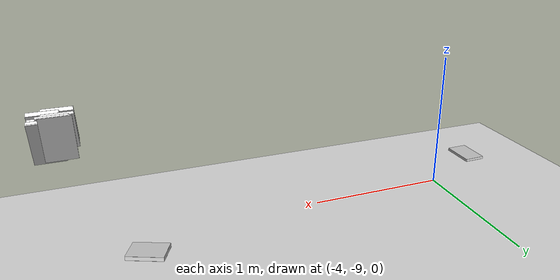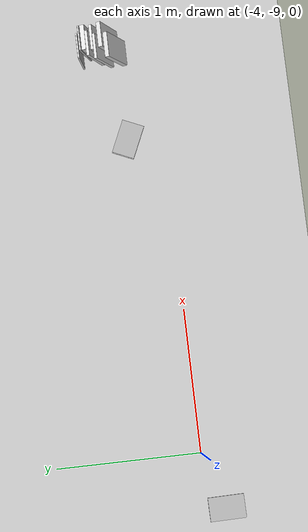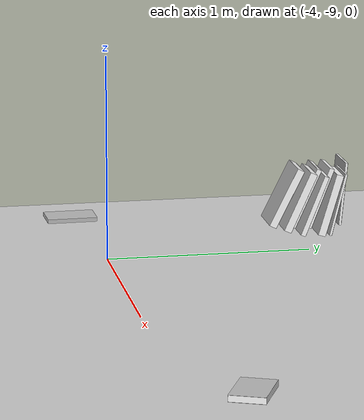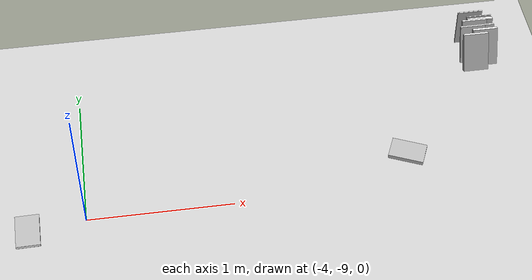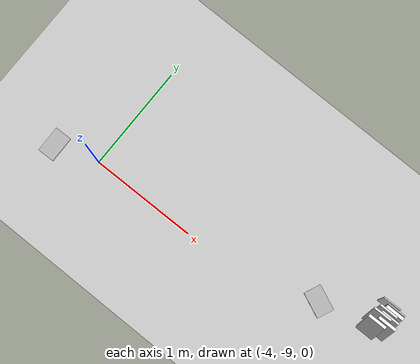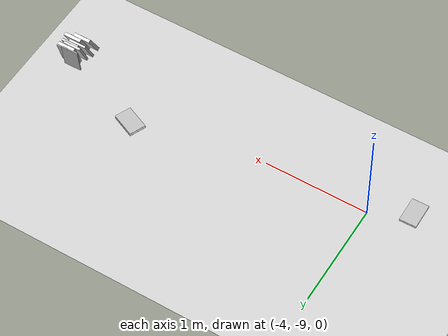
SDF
<sdf version="1.6">
 <world name="default">
  <model name="ground_plane">
   <static>1</static>
   <link name="link">
    <collision name="collision">
     <geometry><plane><normal>0 0 1</normal><size>100 100</size></plane></geometry>
     <surface><friction><ode><mu>1</mu><mu2>1</mu2></ode></friction></surface>
    </collision>
    <visual name="visual">
     <cast_shadows>0</cast_shadows>
     <geometry><plane><normal>0 0 1</normal><size>100 100</size></plane></geometry>
     <material>
      <script><uri>file://media/materials/scripts/gazebo.material</uri><name>Gazebo/Grey</name></script>
     </material>
    </visual>
    <velocity_decay><linear>0</linear><angular>0</angular></velocity_decay>
   </link>
  </model>
  <model name="book_21">
   <link name="cover">
    <pose>0 -0.000108 0.005 0 -0 0</pose>
    <visual name="visual">
     <geometry><box><size>0.245 0.16 0.01</size></box></geometry>
     <material>
      <script>
       <uri>model://book_21/materials/scripts</uri>
       <uri>model://book_21/materials/textures</uri>
       <name>book_21</name>
      </script>
     </material>
    </visual>
    <collision name="collision"><geometry><box><size>0.245 0.16 0.01</size></box></geometry></collision>
   </link>
   <link name="page">
    <pose>0 0.000608 0.005 0 -0 0</pose>
    <visual name="visual">
     <geometry><box><size>0.24502 0.15862 0.008</size></box></geometry>
     <material>
      <lighting>1</lighting>
      <ambient>1 1 1 1</ambient>
      <diffuse>1 1 1 1</diffuse>
      <specular>0.01 0.01 0.01 1</specular>
      <emissive>0 0 0 1</emissive>
      <shader type="vertex"><normal_map>__default__</normal_map></shader>
     </material>
    </visual>
    <collision name="collision"><geometry><box><size>0.245 0.16 0.008</size></box></geometry></collision>
   </link>
   <static>1</static>
   <pose>-1.32998 -8.52484 0.933 -3.13832 -1.32475 1.56842</pose>
  </model>
  <model name="book_3">
   <link name="cover">
    <pose>0 -0.000108 0.01 0 -0 0</pose>
    <visual name="visual">
     <geometry><box><size>0.245 0.16 0.02</size></box></geometry>
     <material>
      <script>
       <uri>model://book_3/materials/scripts</uri>
       <uri>model://book_3/materials/textures</uri>
       <name>book_3</name>
      </script>
     </material>
    </visual>
    <collision name="collision"><geometry><box><size>0.245 0.16 0.02</size></box></geometry></collision>
   </link>
   <link name="page">
    <pose>0 0.000608 0.01 0 -0 0</pose>
    <visual name="visual">
     <geometry><box><size>0.24502 0.15862 0.018</size></box></geometry>
     <material>
      <lighting>1</lighting>
      <ambient>1 1 1 1</ambient>
      <diffuse>1 1 1 1</diffuse>
      <specular>0.01 0.01 0.01 1</specular>
      <emissive>0 0 0 1</emissive>
      <shader type="vertex"><normal_map>__default__</normal_map></shader>
     </material>
    </visual>
    <collision name="collision"><geometry><box><size>0.245 0.16 0.018</size></box></geometry></collision>
   </link>
   <static>1</static>
   <pose>-1.37287 -8.59003 0.954428 -3.1394 -1.1994 1.56955</pose>
  </model>
  <model name="book_4">
   <link name="cover">
    <pose>0 -0.000108 0.01 0 -0 0</pose>
    <visual name="visual">
     <geometry><box><size>0.245 0.16 0.02</size></box></geometry>
     <material>
      <script>
       <uri>model://book_4/materials/scripts</uri>
       <uri>model://book_4/materials/textures</uri>
       <name>book_4</name>
      </script>
     </material>
     <cast_shadows>0</cast_shadows>
    </visual>
    <collision name="collision"><geometry><box><size>0.245 0.16 0.02</size></box></geometry></collision>
   </link>
   <link name="page">
    <pose>0 0.000608 0.01 0 -0 0</pose>
    <visual name="visual">
     <geometry><box><size>0.24502 0.15862 0.018</size></box></geometry>
     <material>
      <lighting>1</lighting>
      <ambient>1 1 1 1</ambient>
      <diffuse>1 1 1 1</diffuse>
      <specular>0.01 0.01 0.01 1</specular>
      <emissive>0 0 0 1</emissive>
      <shader type="vertex"><normal_map>__default__</normal_map></shader>
     </material>
     <cast_shadows>0</cast_shadows>
    </visual>
    <collision name="collision"><geometry><box><size>0.245 0.16 0.018</size></box></geometry></collision>
   </link>
   <static>1</static>
   <pose>-1.33002 -8.62073 0.934243 -3.13946 -1.18764 1.56962</pose>
  </model>
  <model name="book_9">
   <link name="cover">
    <pose>0 -0.000108 0.005 0 -0 0</pose>
    <visual name="visual">
     <geometry><box><size>0.245 0.16 0.01</size></box></geometry>
     <material>
      <script>
       <uri>model://book_9/materials/scripts</uri>
       <uri>model://book_9/materials/textures</uri>
       <name>book_9</name>
      </script>
     </material>
    </visual>
    <collision name="collision"><geometry><box><size>0.245 0.16 0.01</size></box></geometry></collision>
   </link>
   <link name="page">
    <pose>0 0.000608 0.005 0 -0 0</pose>
    <visual name="visual">
     <geometry><box><size>0.24502 0.15862 0.008</size></box></geometry>
     <material>
      <lighting>1</lighting>
      <ambient>1 1 1 1</ambient>
      <diffuse>1 1 1 1</diffuse>
      <specular>0.01 0.01 0.01 1</specular>
      <emissive>0 0 0 1</emissive>
      <shader type="vertex"><normal_map>__default__</normal_map></shader>
     </material>
    </visual>
    <collision name="collision"><geometry><box><size>0.245 0.16 0.008</size></box></geometry></collision>
   </link>
   <static>1</static>
   <pose>-1.38819 -8.49338 0.960616 -3.13349 -1.47234 1.57155</pose>
  </model>
  <model name="book_16_0">
   <link name="cover">
    <pose>0 -0.000108 0.015405 0 -0 0</pose>
    <visual name="visual">
     <geometry><box><size>0.245 0.16 0.03</size></box></geometry>
     <material>
      <script>
       <uri>model://book_16/materials/scripts</uri>
       <uri>model://book_16/materials/textures</uri>
       <name>book_16</name>
      </script>
     </material>
    </visual>
    <collision name="collision"><geometry><box><size>0.245 0.16 0.03</size></box></geometry></collision>
   </link>
   <link name="page">
    <pose>0 0.000608 0.015405 0 -0 0</pose>
    <visual name="visual">
     <geometry><box><size>0.24502 0.15862 0.028</size></box></geometry>
     <material>
      <lighting>1</lighting>
      <ambient>1 1 1 1</ambient>
      <diffuse>1 1 1 1</diffuse>
      <specular>0.01 0.01 0.01 1</specular>
      <emissive>0 0 0 1</emissive>
      <shader type="vertex"><normal_map>__default__</normal_map></shader>
     </material>
    </visual>
    <collision name="collision"><geometry><box><size>0.245 0.16 0.03</size></box></geometry></collision>
   </link>
   <static>1</static>
   <pose>-1.32786 -8.56422 0.936359 -3.13881 -1.28012 1.56893</pose>
  </model>
  <model name="book_13">
   <link name="cover">
    <pose>0 -0.000108 0.015405 0 -0 0</pose>
    <visual name="visual">
     <geometry><box><size>0.245 0.16 0.03</size></box></geometry>
     <material>
      <script>
       <uri>model://book_13/materials/scripts</uri>
       <uri>model://book_13/materials/textures</uri>
       <name>book_13</name>
      </script>
     </material>
    </visual>
    <collision name="collision"><geometry><box><size>0.245 0.16 0.03</size></box></geometry></collision>
   </link>
   <link name="page">
    <pose>0 0.000608 0.015405 0 -0 0</pose>
    <visual name="visual">
     <geometry><box><size>0.24502 0.15862 0.028</size></box></geometry>
     <material>
      <lighting>1</lighting>
      <ambient>1 1 1 1</ambient>
      <diffuse>1 1 1 1</diffuse>
      <specular>0.01 0.01 0.01 1</specular>
      <emissive>0 0 0 1</emissive>
      <shader type="vertex"><normal_map>__default__</normal_map></shader>
     </material>
    </visual>
    <collision name="collision"><geometry><box><size>0.245 0.16 0.03</size></box></geometry></collision>
   </link>
   <static>1</static>
   <pose>-1.3923 -8.72149 0.9569 -3.13982 -1.10393 1.57001</pose>
  </model>
  <model name="book_6">
   <link name="cover">
    <pose>0 -0.000108 0.01 0 -0 0</pose>
    <visual name="visual">
     <geometry><box><size>0.245 0.16 0.02</size></box></geometry>
     <material>
      <script>
       <uri>model://book_6/materials/scripts</uri>
       <uri>model://book_6/materials/textures</uri>
       <name>book_6</name>
      </script>
     </material>
    </visual>
    <collision name="collision"><geometry><box><size>0.245 0.16 0.02</size></box></geometry></collision>
   </link>
   <link name="page">
    <pose>0 0.000608 0.01 0 -0 0</pose>
    <visual name="visual">
     <geometry><box><size>0.24502 0.15862 0.018</size></box></geometry>
     <material>
      <lighting>1</lighting>
      <ambient>1 1 1 1</ambient>
      <diffuse>1 1 1 1</diffuse>
      <specular>0.01 0.01 0.01 1</specular>
      <emissive>0 0 0 1</emissive>
      <shader type="vertex"><normal_map>__default__</normal_map></shader>
     </material>
    </visual>
    <collision name="collision"><geometry><box><size>0.245 0.16 0.018</size></box></geometry></collision>
   </link>
   <static>1</static>
   <pose>-1.39435 -8.64079 0.950904 -3.13966 -1.14492 1.56984</pose>
  </model>
  <model name="book_19">
   <link name="cover">
    <pose>0 -0.000108 0.015405 0 -0 0</pose>
    <visual name="visual">
     <geometry><box><size>0.245 0.16 0.03</size></box></geometry>
     <material>
      <script>
       <uri>model://book_19/materials/scripts</uri>
       <uri>model://book_19/materials/textures</uri>
       <name>book_19</name>
      </script>
     </material>
    </visual>
    <collision name="collision"><geometry><box><size>0.245 0.16 0.03</size></box></geometry></collision>
   </link>
   <link name="page">
    <pose>0 0.000608 0.015405 0 -0 0</pose>
    <visual name="visual">
     <geometry><box><size>0.24502 0.15862 0.028</size></box></geometry>
     <material>
      <lighting>1</lighting>
      <ambient>1 1 1 1</ambient>
      <diffuse>1 1 1 1</diffuse>
      <specular>0.01 0.01 0.01 1</specular>
      <emissive>0 0 0 1</emissive>
      <shader type="vertex"><normal_map>__default__</normal_map></shader>
     </material>
    </visual>
    <collision name="collision"><geometry><box><size>0.245 0.16 0.03</size></box></geometry></collision>
   </link>
   <static>1</static>
   <pose>-1.32315 -8.68246 0.955089 -3.13968 -1.14225 1.56985</pose>
  </model>
  <model name="book_6_0">
   <link name="cover">
    <pose>0 -0.000108 0.01 0 -0 0</pose>
    <visual name="visual">
     <geometry><box><size>0.245 0.16 0.02</size></box></geometry>
     <material>
      <script>
       <uri>model://book_6/materials/scripts</uri>
       <uri>model://book_6/materials/textures</uri>
       <name>book_6</name>
      </script>
     </material>
    </visual>
    <collision name="collision"><geometry><box><size>0.245 0.16 0.02</size></box></geometry></collision>
   </link>
   <link name="page">
    <pose>0 0.000608 0.01 0 -0 0</pose>
    <visual name="visual">
     <geometry><box><size>0.24502 0.15862 0.018</size></box></geometry>
     <material>
      <lighting>1</lighting>
      <ambient>1 1 1 1</ambient>
      <diffuse>1 1 1 1</diffuse>
      <specular>0.01 0.01 0.01 1</specular>
      <emissive>0 0 0 1</emissive>
      <shader type="vertex"><normal_map>__default__</normal_map></shader>
     </material>
    </visual>
    <collision name="collision"><geometry><box><size>0.245 0.16 0.018</size></box></geometry></collision>
   </link>
   <static>1</static>
   <pose>-4.37689 -9.12673 0.113948 0 -0 1.58993</pose>
  </model>
  <model name="book_17_0">
   <link name="cover">
    <pose>0 -0.000108 0.015405 0 -0 0</pose>
    <visual name="visual">
     <geometry><box><size>0.245 0.16 0.03</size></box></geometry>
     <material>
      <script>
       <uri>model://book_17/materials/scripts</uri>
       <uri>model://book_17/materials/textures</uri>
       <name>book_17</name>
      </script>
     </material>
    </visual>
    <collision name="collision"><geometry><box><size>0.245 0.16 0.03</size></box></geometry></collision>
   </link>
   <link name="page">
    <pose>0 0.000608 0.015405 0 -0 0</pose>
    <visual name="visual">
     <geometry><box><size>0.24502 0.15862 0.028</size></box></geometry>
     <material>
      <lighting>1</lighting>
      <ambient>1 1 1 1</ambient>
      <diffuse>1 1 1 1</diffuse>
      <specular>0.01 0.01 0.01 1</specular>
      <emissive>0 0 0 1</emissive>
      <shader type="vertex"><normal_map>__default__</normal_map></shader>
     </material>
    </visual>
    <collision name="collision"><geometry><box><size>0.245 0.16 0.03</size></box></geometry></collision>
   </link>
   <static>1</static>
   <pose>-1.75665 -8.74352 0.022868 0 0 -0.413172</pose>
  </model>
 </world>
</sdf>
